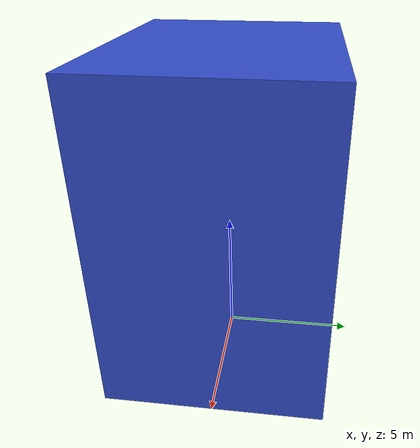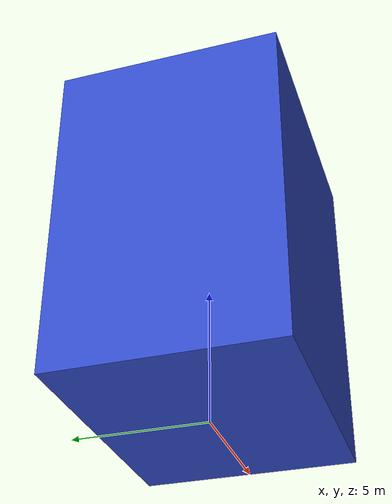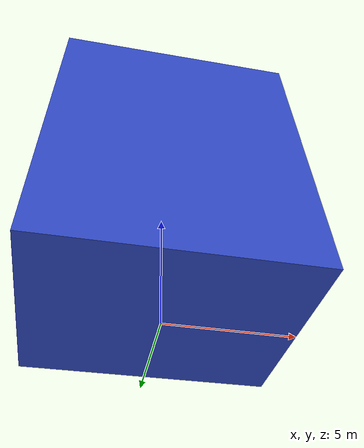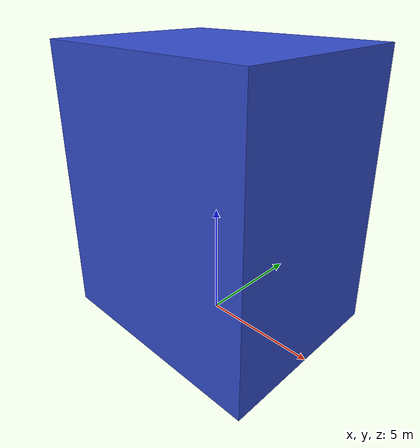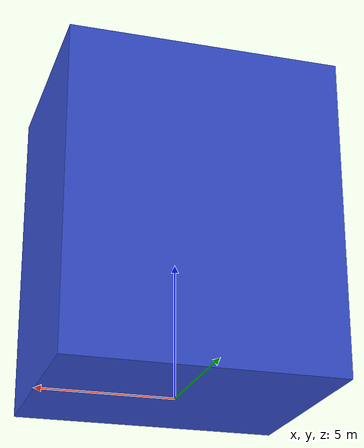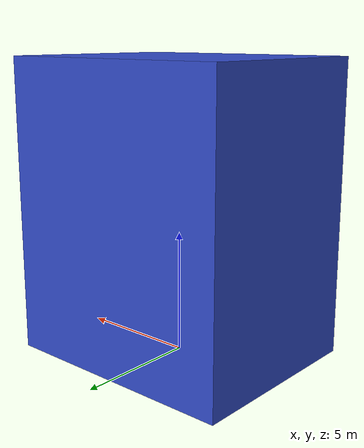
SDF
<?xml version="1.0"?>
<sdf version="1.9">
	<model name="simple_building">
		<pose>0 0 6 0 0 0</pose>
		<static>true</static>
		<link name="link">
			<collision name="col">
				<geometry>
					<box>
						<size>10 8 12</size>
					</box>
				</geometry>
			</collision>
			<visual name="vis">
				<geometry>
					<box>
						<size>10 8 12</size>
					</box>
				</geometry>
				<material>
					<ambient>0.2 0.3 0.8 1</ambient>
					<diffuse>0.2 0.3 0.8 1</diffuse>
				</material>
			</visual>
		</link>
	</model>
</sdf>
